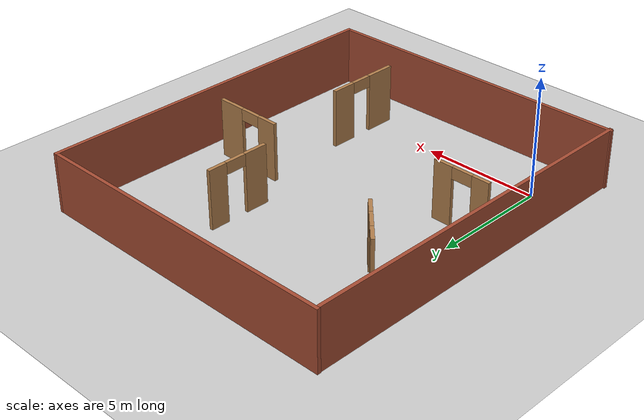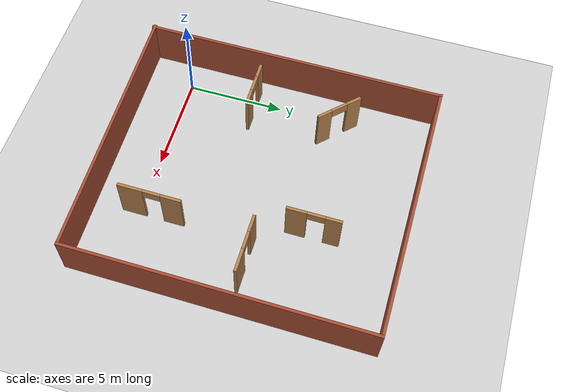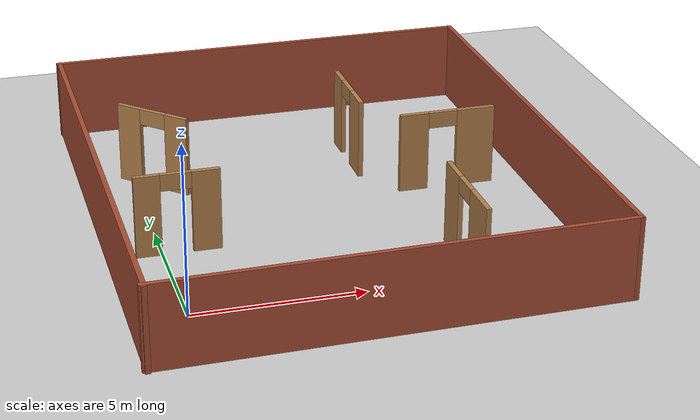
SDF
<sdf version="1.7">
 <world name="default">
  <light name="sun" type="directional">
   <pose>0 0 10 0 -0 0</pose>
   <diffuse>0.8 0.8 0.8 1</diffuse>
   <specular>0.2 0.2 0.2 1</specular>
   <attenuation>
    <range>1000</range>
    <constant>0.9</constant>
    <linear>0.01</linear>
    <quadratic>0.001</quadratic>
   </attenuation>
   <direction>-0.5 0.1 -0.9</direction>
   <spot><inner_angle>0</inner_angle><outer_angle>0</outer_angle><falloff>0</falloff></spot>
  </light>
  <model name="ground_plane">
   <static>1</static>
   <link name="link1">
    <collision name="collision1">
     <geometry><plane><normal>0 0 1</normal><size>100 100</size></plane></geometry>
     <surface>
      <contact><collide_bitmask>65535</collide_bitmask></contact>
      <friction><ode><mu>100</mu><mu2>50</mu2></ode></friction>
     </surface>
    </collision>
    <visual name="visual">
     <cast_shadows>0</cast_shadows>
     <geometry><plane><normal>0 0 1</normal><size>100 100</size></plane></geometry>
     <material>
      <script><uri>file://media/materials/scripts/gazebo.material</uri><name>Gazebo/Grey</name></script>
     </material>
    </visual>
   </link>
  </model>
  <gravity>0 0 -9.8</gravity>
  <magnetic_field>6e-06 2.3e-05 -4.2e-05</magnetic_field>
  <atmosphere type="adiabatic"/>
  <physics type="ode">
   <max_step_size>0.001</max_step_size>
   <real_time_factor>1</real_time_factor>
   <real_time_update_rate>1000</real_time_update_rate>
  </physics>
  <scene><ambient>0.4 0.4 0.4 1</ambient><background>0.7 0.7 0.7 1</background><shadows>1</shadows></scene>
  <audio><device>default</device></audio>
  <spherical_coordinates>
   <surface_model>EARTH_WGS84</surface_model>
   <latitude_deg>0</latitude_deg>
   <longitude_deg>0</longitude_deg>
   <elevation>0</elevation>
   <heading_deg>0</heading_deg>
  </spherical_coordinates>
  <model name="racing_track">
   <pose>5.12444 5.2307 0 0 -0 0</pose>
   <link name="Wall_17">
    <pose>1.83086 3.39811 0 0 -0 -1.5708</pose>
    <visual name="Wall_17_Visual_0">
     <pose>-0.9625 0 1.25 0 -0 0</pose>
     <geometry><box><size>0.825001 0.15 2.5</size></box></geometry>
     <material>
      <script><uri>file://media/materials/scripts/gazebo.material</uri><name>Gazebo/Wood</name></script>
      <ambient>1 1 1 1</ambient>
     </material>
     <meta><layer>0</layer></meta>
    </visual>
    <collision name="Wall_17_Collision_0">
     <geometry><box><size>0.825001 0.15 2.5</size></box></geometry>
     <pose>-0.9625 0 1.25 0 -0 0</pose>
    </collision>
    <visual name="Wall_17_Visual_1">
     <pose>0.8625 0 1.25 0 -0 0</pose>
     <geometry><box><size>1.025 0.15 2.5</size></box></geometry>
     <material>
      <script><uri>file://media/materials/scripts/gazebo.material</uri><name>Gazebo/Wood</name></script>
      <ambient>1 1 1 1</ambient>
     </material>
     <meta><layer>0</layer></meta>
    </visual>
    <collision name="Wall_17_Collision_1">
     <geometry><box><size>1.025 0.15 2.5</size></box></geometry>
     <pose>0.8625 0 1.25 0 -0 0</pose>
    </collision>
    <visual name="Wall_17_Visual_2">
     <pose>-0.099999 0 2.25 0 -0 0</pose>
     <geometry><box><size>0.9 0.15 0.5</size></box></geometry>
     <material>
      <script><uri>file://media/materials/scripts/gazebo.material</uri><name>Gazebo/Wood</name></script>
      <ambient>1 1 1 1</ambient>
     </material>
     <meta><layer>0</layer></meta>
    </visual>
    <collision name="Wall_17_Collision_2">
     <geometry><box><size>0.9 0.15 0.5</size></box></geometry>
     <pose>-0.099999 0 2.25 0 -0 0</pose>
    </collision>
   </link>
   <link name="Wall_19">
    <pose>-4.47829 3.02726 0 0 -0 -0.785398</pose>
    <visual name="Wall_19_Visual_0">
     <pose>-0.84353 0 1.25 0 -0 0</pose>
     <geometry><box><size>0.812939 0.15 2.5</size></box></geometry>
     <material>
      <script><uri>file://media/materials/scripts/gazebo.material</uri><name>Gazebo/Wood</name></script>
      <ambient>1 1 1 1</ambient>
     </material>
     <meta><layer>0</layer></meta>
    </visual>
    <collision name="Wall_19_Collision_0">
     <geometry><box><size>0.812939 0.15 2.5</size></box></geometry>
     <pose>-0.84353 0 1.25 0 -0 0</pose>
    </collision>
    <visual name="Wall_19_Visual_1">
     <pose>0.85647 0 1.25 0 -0 0</pose>
     <geometry><box><size>0.787061 0.15 2.5</size></box></geometry>
     <material>
      <script><uri>file://media/materials/scripts/gazebo.material</uri><name>Gazebo/Wood</name></script>
      <ambient>1 1 1 1</ambient>
     </material>
     <meta><layer>0</layer></meta>
    </visual>
    <collision name="Wall_19_Collision_1">
     <geometry><box><size>0.787061 0.15 2.5</size></box></geometry>
     <pose>0.85647 0 1.25 0 -0 0</pose>
    </collision>
    <visual name="Wall_19_Visual_2">
     <pose>0.012939 0 2.25 0 -0 0</pose>
     <geometry><box><size>0.9 0.15 0.5</size></box></geometry>
     <material>
      <script><uri>file://media/materials/scripts/gazebo.material</uri><name>Gazebo/Wood</name></script>
      <ambient>1 1 1 1</ambient>
     </material>
     <meta><layer>0</layer></meta>
    </visual>
    <collision name="Wall_19_Collision_2">
     <geometry><box><size>0.9 0.15 0.5</size></box></geometry>
     <pose>0.012939 0 2.25 0 -0 0</pose>
    </collision>
   </link>
   <link name="Wall_2">
    <collision name="Wall_2_Collision">
     <geometry><box><size>15.75 0.15 2.5</size></box></geometry>
     <pose>0 0 1.25 0 -0 0</pose>
    </collision>
    <visual name="Wall_2_Visual">
     <pose>0 0 1.25 0 -0 0</pose>
     <geometry><box><size>15.75 0.15 2.5</size></box></geometry>
     <material>
      <script><uri>file://media/materials/scripts/gazebo.material</uri><name>Gazebo/Bricks</name></script>
      <ambient>1 1 1 1</ambient>
     </material>
     <meta><layer>0</layer></meta>
    </visual>
    <pose>-6.66598 -2.6e-05 0 0 -0 -1.5708</pose>
   </link>
   <link name="Wall_21">
    <pose>-4.63414 -1.54189 0 0 -0 0</pose>
    <visual name="Wall_21_Visual_0">
     <pose>-0.8675 0 1.25 0 -0 0</pose>
     <geometry><box><size>0.765 0.15 2.5</size></box></geometry>
     <material>
      <script><uri>file://media/materials/scripts/gazebo.material</uri><name>Gazebo/Wood</name></script>
      <ambient>1 1 1 1</ambient>
     </material>
     <meta><layer>0</layer></meta>
    </visual>
    <collision name="Wall_21_Collision_0">
     <geometry><box><size>0.765 0.15 2.5</size></box></geometry>
     <pose>-0.8675 0 1.25 0 -0 0</pose>
    </collision>
    <visual name="Wall_21_Visual_1">
     <pose>0.8325 0 1.25 0 -0 0</pose>
     <geometry><box><size>0.835 0.15 2.5</size></box></geometry>
     <material>
      <script><uri>file://media/materials/scripts/gazebo.material</uri><name>Gazebo/Wood</name></script>
      <ambient>1 1 1 1</ambient>
     </material>
     <meta><layer>0</layer></meta>
    </visual>
    <collision name="Wall_21_Collision_1">
     <geometry><box><size>0.835 0.15 2.5</size></box></geometry>
     <pose>0.8325 0 1.25 0 -0 0</pose>
    </collision>
    <visual name="Wall_21_Visual_2">
     <pose>-0.035 0 2.25 0 -0 0</pose>
     <geometry><box><size>0.9 0.15 0.5</size></box></geometry>
     <material>
      <script><uri>file://media/materials/scripts/gazebo.material</uri><name>Gazebo/Wood</name></script>
      <ambient>1 1 1 1</ambient>
     </material>
     <meta><layer>0</layer></meta>
    </visual>
    <collision name="Wall_21_Collision_2">
     <geometry><box><size>0.9 0.15 0.5</size></box></geometry>
     <pose>-0.035 0 2.25 0 -0 0</pose>
    </collision>
   </link>
   <link name="Wall_3">
    <collision name="Wall_3_Collision">
     <geometry><box><size>13.5443 0.15 2.5</size></box></geometry>
     <pose>0 0 1.25 0 -0 0</pose>
    </collision>
    <visual name="Wall_3_Visual">
     <pose>0 0 1.25 0 -0 0</pose>
     <geometry><box><size>13.5443 0.15 2.5</size></box></geometry>
     <material>
      <script><uri>file://media/materials/scripts/gazebo.material</uri><name>Gazebo/Bricks</name></script>
      <ambient>1 1 1 1</ambient>
     </material>
     <meta><layer>0</layer></meta>
    </visual>
    <pose>-0.030285 -7.64957 0 0 -0 0.013331</pose>
   </link>
   <link name="Wall_4">
    <collision name="Wall_4_Collision">
     <geometry><box><size>15.5103 0.15 2.5</size></box></geometry>
     <pose>0 0 1.25 0 -0 0</pose>
    </collision>
    <visual name="Wall_4_Visual">
     <pose>0 0 1.25 0 -0 0</pose>
     <geometry><box><size>15.5103 0.15 2.5</size></box></geometry>
     <material>
      <script><uri>file://media/materials/scripts/gazebo.material</uri><name>Gazebo/Bricks</name></script>
      <ambient>1 1 1 1</ambient>
     </material>
     <meta><layer>0</layer></meta>
    </visual>
    <pose>6.72323 0.119847 0 0 -0 1.57139</pose>
   </link>
   <link name="Wall_5">
    <collision name="Wall_5_Collision">
     <geometry><box><size>13.5 0.15 2.5</size></box></geometry>
     <pose>0 0 1.25 0 -0 0</pose>
    </collision>
    <visual name="Wall_5_Visual">
     <pose>0 0 1.25 0 -0 0</pose>
     <geometry><box><size>13.5 0.15 2.5</size></box></geometry>
     <material>
      <script><uri>file://media/materials/scripts/gazebo.material</uri><name>Gazebo/Bricks</name></script>
      <ambient>1 1 1 1</ambient>
     </material>
     <meta><layer>0</layer></meta>
    </visual>
    <pose>-0.0175 7.79998 0 0 -0 3.14159</pose>
   </link>
   <link name="Wall_7">
    <pose>2.97645 -4.45427 0 0 -0 1.5708</pose>
    <visual name="Wall_7_Visual_0">
     <pose>-0.978984 0 1.25 0 -0 0</pose>
     <geometry><box><size>1.29203 0.15 2.5</size></box></geometry>
     <material>
      <script><uri>file://media/materials/scripts/gazebo.material</uri><name>Gazebo/Wood</name></script>
      <ambient>1 1 1 1</ambient>
     </material>
     <meta><layer>0</layer></meta>
    </visual>
    <collision name="Wall_7_Collision_0">
     <geometry><box><size>1.29203 0.15 2.5</size></box></geometry>
     <pose>-0.978984 0 1.25 0 -0 0</pose>
    </collision>
    <visual name="Wall_7_Visual_1">
     <pose>1.09602 0 1.25 0 -0 0</pose>
     <geometry><box><size>1.05797 0.15 2.5</size></box></geometry>
     <material>
      <script><uri>file://media/materials/scripts/gazebo.material</uri><name>Gazebo/Wood</name></script>
      <ambient>1 1 1 1</ambient>
     </material>
     <meta><layer>0</layer></meta>
    </visual>
    <collision name="Wall_7_Collision_1">
     <geometry><box><size>1.05797 0.15 2.5</size></box></geometry>
     <pose>1.09602 0 1.25 0 -0 0</pose>
    </collision>
    <visual name="Wall_7_Visual_2">
     <pose>0.117032 0 2.25 0 -0 0</pose>
     <geometry><box><size>0.9 0.15 0.5</size></box></geometry>
     <material>
      <script><uri>file://media/materials/scripts/gazebo.material</uri><name>Gazebo/Wood</name></script>
      <ambient>1 1 1 1</ambient>
     </material>
     <meta><layer>0</layer></meta>
    </visual>
    <collision name="Wall_7_Collision_2">
     <geometry><box><size>0.9 0.15 0.5</size></box></geometry>
     <pose>0.117032 0 2.25 0 -0 0</pose>
    </collision>
   </link>
   <link name="Wall_9">
    <pose>4.16531 0.713065 0 0 -0 3.14159</pose>
    <visual name="Wall_9_Visual_0">
     <pose>-0.901298 0 1.25 0 -0 0</pose>
     <geometry><box><size>1.1974 0.15 2.5</size></box></geometry>
     <material>
      <script><uri>file://media/materials/scripts/gazebo.material</uri><name>Gazebo/Wood</name></script>
      <ambient>1 1 1 1</ambient>
     </material>
     <meta><layer>0</layer></meta>
    </visual>
    <collision name="Wall_9_Collision_0">
     <geometry><box><size>1.1974 0.15 2.5</size></box></geometry>
     <pose>-0.901298 0 1.25 0 -0 0</pose>
    </collision>
    <visual name="Wall_9_Visual_1">
     <pose>1.0487 0 1.25 0 -0 0</pose>
     <geometry><box><size>0.902596 0.15 2.5</size></box></geometry>
     <material>
      <script><uri>file://media/materials/scripts/gazebo.material</uri><name>Gazebo/Wood</name></script>
      <ambient>1 1 1 1</ambient>
     </material>
     <meta><layer>0</layer></meta>
    </visual>
    <collision name="Wall_9_Collision_1">
     <geometry><box><size>0.902596 0.15 2.5</size></box></geometry>
     <pose>1.0487 0 1.25 0 -0 0</pose>
    </collision>
    <visual name="Wall_9_Visual_2">
     <pose>0.147404 0 2.25 0 -0 0</pose>
     <geometry><box><size>0.9 0.15 0.5</size></box></geometry>
     <material>
      <script><uri>file://media/materials/scripts/gazebo.material</uri><name>Gazebo/Wood</name></script>
      <ambient>1 1 1 1</ambient>
     </material>
     <meta><layer>0</layer></meta>
    </visual>
    <collision name="Wall_9_Collision_2">
     <geometry><box><size>0.9 0.15 0.5</size></box></geometry>
     <pose>0.147404 0 2.25 0 -0 0</pose>
    </collision>
   </link>
   <static>1</static>
  </model>
 </world>
</sdf>
